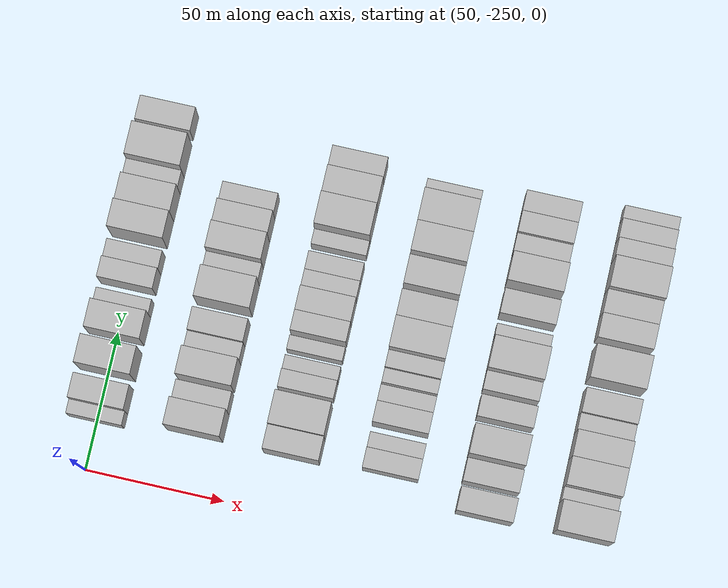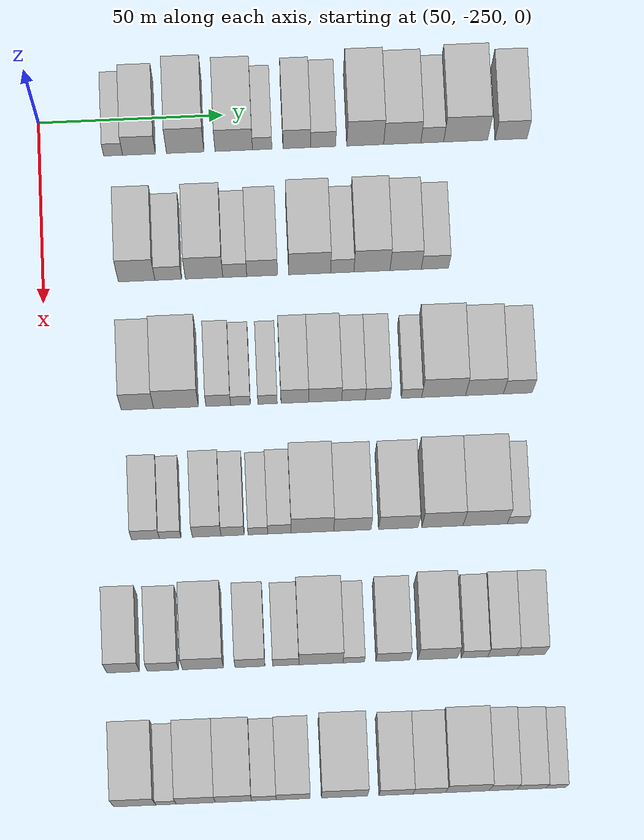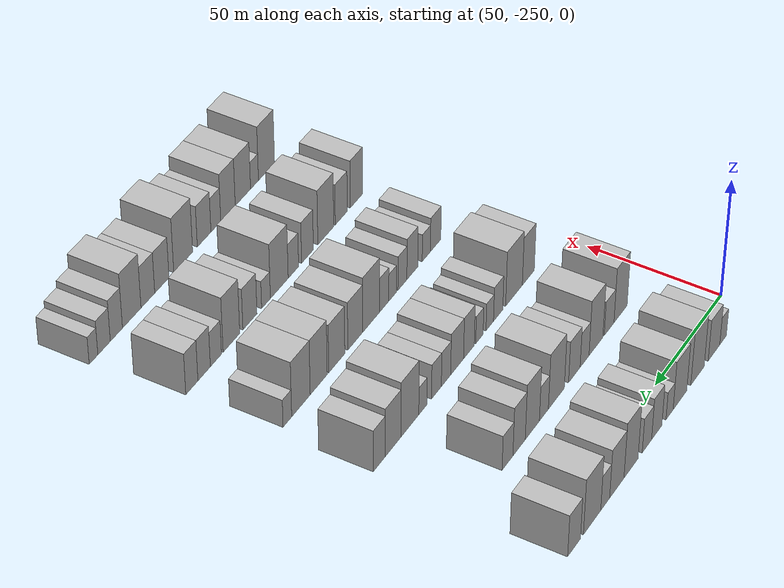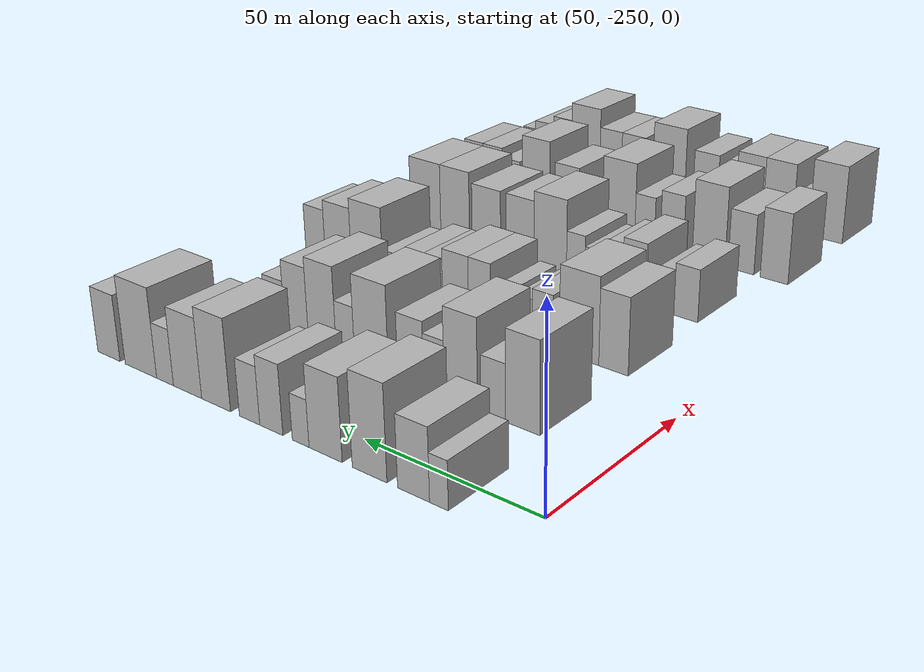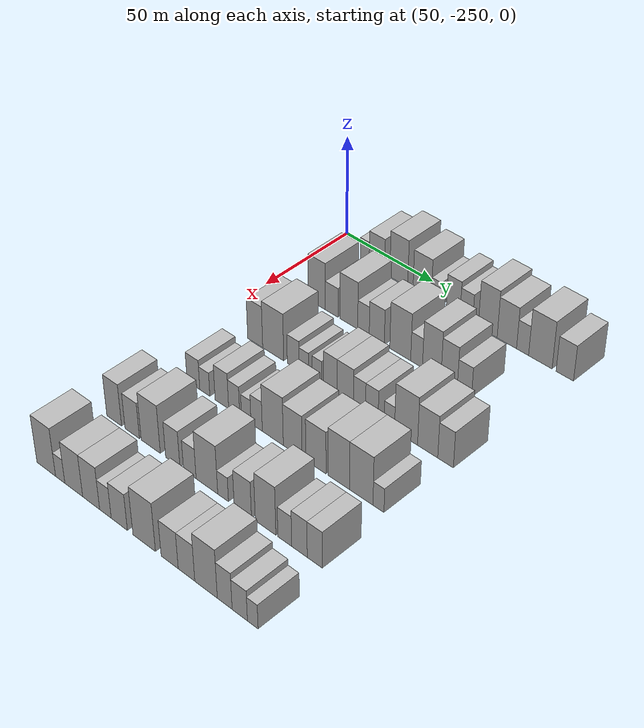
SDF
<sdf version="1.6">
 <world name="default">
  <model name="building_35">
   <static>1</static>
   <pose>50.0000 -230.1163 0 0.000000 0.000000 0.000000</pose>
   <link name="link">
    <pose>0 0 6.00 0 0 0</pose>
    <collision name="collision"><geometry><box><size>20.0000 5.0898 12.0000</size></box></geometry></collision>
    <visual name="visual">
     <cast_shadows>0</cast_shadows>
     <geometry><box><size>20.0000 5.0898 12.0000</size></box></geometry>
     <material>
      <script>
       <uri>model://HANNAS_wall/materials/scripts</uri>
       <uri>model://HANNAS_wall/materials/textures</uri>
       <name>vrc/HANNAS_wall</name>
      </script>
     </material>
    </visual>
   </link>
  </model>
  <model name="building_36">
   <static>1</static>
   <pose>50.0000 -223.1273 0 0.000000 0.000000 0.000000</pose>
   <link name="link">
    <pose>0 0 9.00 0 0 0</pose>
    <collision name="collision"><geometry><box><size>20.0000 8.8881 18.0000</size></box></geometry></collision>
    <visual name="visual">
     <cast_shadows>0</cast_shadows>
     <geometry><box><size>20.0000 8.8881 18.0000</size></box></geometry>
     <material>
      <script>
       <uri>model://HANNAS_wall/materials/scripts</uri>
       <uri>model://HANNAS_wall/materials/textures</uri>
       <name>vrc/HANNAS_wall</name>
      </script>
     </material>
    </visual>
   </link>
  </model>
  <model name="building_37">
   <static>1</static>
   <pose>50.0000 -210.6286 0 0.000000 0.000000 0.000000</pose>
   <link name="link">
    <pose>0 0 12.00 0 0 0</pose>
    <collision name="collision"><geometry><box><size>20.0000 10.1094 24.0000</size></box></geometry></collision>
    <visual name="visual">
     <cast_shadows>0</cast_shadows>
     <geometry><box><size>20.0000 10.1094 24.0000</size></box></geometry>
     <material>
      <script>
       <uri>model://HANNAS_wall/materials/scripts</uri>
       <uri>model://HANNAS_wall/materials/textures</uri>
       <name>vrc/HANNAS_wall</name>
      </script>
     </material>
    </visual>
   </link>
  </model>
  <model name="building_38">
   <static>1</static>
   <pose>50.0000 -197.5220 0 0.000000 0.000000 0.000000</pose>
   <link name="link">
    <pose>0 0 10.50 0 0 0</pose>
    <collision name="collision"><geometry><box><size>20.0000 10.1038 21.0000</size></box></geometry></collision>
    <visual name="visual">
     <cast_shadows>0</cast_shadows>
     <geometry><box><size>20.0000 10.1038 21.0000</size></box></geometry>
     <material>
      <script>
       <uri>model://HANNAS_wall/materials/scripts</uri>
       <uri>model://HANNAS_wall/materials/textures</uri>
       <name>vrc/HANNAS_wall</name>
      </script>
     </material>
    </visual>
   </link>
  </model>
  <model name="building_39">
   <static>1</static>
   <pose>50.0000 -189.8411 0 0.000000 0.000000 0.000000</pose>
   <link name="link">
    <pose>0 0 6.00 0 0 0</pose>
    <collision name="collision"><geometry><box><size>20.0000 5.2579 12.0000</size></box></geometry></collision>
    <visual name="visual">
     <cast_shadows>0</cast_shadows>
     <geometry><box><size>20.0000 5.2579 12.0000</size></box></geometry>
     <material>
      <script>
       <uri>model://HANNAS_wall/materials/scripts</uri>
       <uri>model://HANNAS_wall/materials/textures</uri>
       <name>vrc/HANNAS_wall</name>
      </script>
     </material>
    </visual>
   </link>
  </model>
  <model name="building_40">
   <static>1</static>
   <pose>50.0000 -180.4697 0 0.000000 0.000000 0.000000</pose>
   <link name="link">
    <pose>0 0 9.00 0 0 0</pose>
    <collision name="collision"><geometry><box><size>20.0000 7.4849 18.0000</size></box></geometry></collision>
    <visual name="visual">
     <cast_shadows>0</cast_shadows>
     <geometry><box><size>20.0000 7.4849 18.0000</size></box></geometry>
     <material>
      <script>
       <uri>model://HANNAS_wall/materials/scripts</uri>
       <uri>model://HANNAS_wall/materials/textures</uri>
       <name>vrc/HANNAS_wall</name>
      </script>
     </material>
    </visual>
   </link>
  </model>
  <model name="building_41">
   <static>1</static>
   <pose>50.0000 -173.3436 0 0.000000 0.000000 0.000000</pose>
   <link name="link">
    <pose>0 0 7.50 0 0 0</pose>
    <collision name="collision"><geometry><box><size>20.0000 6.7671 15.0000</size></box></geometry></collision>
    <visual name="visual">
     <cast_shadows>0</cast_shadows>
     <geometry><box><size>20.0000 6.7671 15.0000</size></box></geometry>
     <material>
      <script>
       <uri>model://HANNAS_wall/materials/scripts</uri>
       <uri>model://HANNAS_wall/materials/textures</uri>
       <name>vrc/HANNAS_wall</name>
      </script>
     </material>
    </visual>
   </link>
  </model>
  <model name="building_42">
   <static>1</static>
   <pose>50.0000 -161.9749 0 0.000000 0.000000 0.000000</pose>
   <link name="link">
    <pose>0 0 12.00 0 0 0</pose>
    <collision name="collision"><geometry><box><size>20.0000 9.9704 24.0000</size></box></geometry></collision>
    <visual name="visual">
     <cast_shadows>0</cast_shadows>
     <geometry><box><size>20.0000 9.9704 24.0000</size></box></geometry>
     <material>
      <script>
       <uri>model://HANNAS_wall/materials/scripts</uri>
       <uri>model://HANNAS_wall/materials/textures</uri>
       <name>vrc/HANNAS_wall</name>
      </script>
     </material>
    </visual>
   </link>
  </model>
  <model name="building_43">
   <static>1</static>
   <pose>50.0000 -151.9547 0 0.000000 0.000000 0.000000</pose>
   <link name="link">
    <pose>0 0 10.50 0 0 0</pose>
    <collision name="collision"><geometry><box><size>20.0000 10.0702 21.0000</size></box></geometry></collision>
    <visual name="visual">
     <cast_shadows>0</cast_shadows>
     <geometry><box><size>20.0000 10.0702 21.0000</size></box></geometry>
     <material>
      <script>
       <uri>model://HANNAS_wall/materials/scripts</uri>
       <uri>model://HANNAS_wall/materials/textures</uri>
       <name>vrc/HANNAS_wall</name>
      </script>
     </material>
    </visual>
   </link>
  </model>
  <model name="building_44">
   <static>1</static>
   <pose>50.0000 -143.8304 0 0.000000 0.000000 0.000000</pose>
   <link name="link">
    <pose>0 0 7.50 0 0 0</pose>
    <collision name="collision"><geometry><box><size>20.0000 6.1783 15.0000</size></box></geometry></collision>
    <visual name="visual">
     <cast_shadows>0</cast_shadows>
     <geometry><box><size>20.0000 6.1783 15.0000</size></box></geometry>
     <material>
      <script>
       <uri>model://HANNAS_wall/materials/scripts</uri>
       <uri>model://HANNAS_wall/materials/textures</uri>
       <name>vrc/HANNAS_wall</name>
      </script>
     </material>
    </visual>
   </link>
  </model>
  <model name="building_45">
   <static>1</static>
   <pose>50.0000 -134.7940 0 0.000000 0.000000 0.000000</pose>
   <link name="link">
    <pose>0 0 12.00 0 0 0</pose>
    <collision name="collision"><geometry><box><size>20.0000 11.8945 24.0000</size></box></geometry></collision>
    <visual name="visual">
     <cast_shadows>0</cast_shadows>
     <geometry><box><size>20.0000 11.8945 24.0000</size></box></geometry>
     <material>
      <script>
       <uri>model://HANNAS_wall/materials/scripts</uri>
       <uri>model://HANNAS_wall/materials/textures</uri>
       <name>vrc/HANNAS_wall</name>
      </script>
     </material>
    </visual>
   </link>
  </model>
  <model name="building_46">
   <static>1</static>
   <pose>50.0000 -122.5110 0 0.000000 0.000000 0.000000</pose>
   <link name="link">
    <pose>0 0 9.00 0 0 0</pose>
    <collision name="collision"><geometry><box><size>20.0000 8.6716 18.0000</size></box></geometry></collision>
    <visual name="visual">
     <cast_shadows>0</cast_shadows>
     <geometry><box><size>20.0000 8.6716 18.0000</size></box></geometry>
     <material>
      <script>
       <uri>model://HANNAS_wall/materials/scripts</uri>
       <uri>model://HANNAS_wall/materials/textures</uri>
       <name>vrc/HANNAS_wall</name>
      </script>
     </material>
    </visual>
   </link>
  </model>
  <model name="building_152">
   <static>1</static>
   <pose>85.0000 -224.9317 0 0.000000 0.000000 0.000000</pose>
   <link name="link">
    <pose>0 0 12.00 0 0 0</pose>
    <collision name="collision"><geometry><box><size>20.0000 9.7691 24.0000</size></box></geometry></collision>
    <visual name="visual">
     <cast_shadows>0</cast_shadows>
     <geometry><box><size>20.0000 9.7691 24.0000</size></box></geometry>
     <material>
      <script>
       <uri>model://HANNAS_wall/materials/scripts</uri>
       <uri>model://HANNAS_wall/materials/textures</uri>
       <name>vrc/HANNAS_wall</name>
      </script>
     </material>
    </visual>
   </link>
  </model>
  <model name="building_153">
   <static>1</static>
   <pose>85.0000 -216.4548 0 0.000000 0.000000 0.000000</pose>
   <link name="link">
    <pose>0 0 7.50 0 0 0</pose>
    <collision name="collision"><geometry><box><size>20.0000 7.1848 15.0000</size></box></geometry></collision>
    <visual name="visual">
     <cast_shadows>0</cast_shadows>
     <geometry><box><size>20.0000 7.1848 15.0000</size></box></geometry>
     <material>
      <script>
       <uri>model://HANNAS_wall/materials/scripts</uri>
       <uri>model://HANNAS_wall/materials/textures</uri>
       <name>vrc/HANNAS_wall</name>
      </script>
     </material>
    </visual>
   </link>
  </model>
  <model name="building_154">
   <static>1</static>
   <pose>85.0000 -206.8401 0 0.000000 0.000000 0.000000</pose>
   <link name="link">
    <pose>0 0 12.00 0 0 0</pose>
    <collision name="collision"><geometry><box><size>20.0000 10.0445 24.0000</size></box></geometry></collision>
    <visual name="visual">
     <cast_shadows>0</cast_shadows>
     <geometry><box><size>20.0000 10.0445 24.0000</size></box></geometry>
     <material>
      <script>
       <uri>model://HANNAS_wall/materials/scripts</uri>
       <uri>model://HANNAS_wall/materials/textures</uri>
       <name>vrc/HANNAS_wall</name>
      </script>
     </material>
    </visual>
   </link>
  </model>
  <model name="building_155">
   <static>1</static>
   <pose>85.0000 -198.6066 0 0.000000 0.000000 0.000000</pose>
   <link name="link">
    <pose>0 0 7.50 0 0 0</pose>
    <collision name="collision"><geometry><box><size>20.0000 6.4226 15.0000</size></box></geometry></collision>
    <visual name="visual">
     <cast_shadows>0</cast_shadows>
     <geometry><box><size>20.0000 6.4226 15.0000</size></box></geometry>
     <material>
      <script>
       <uri>model://HANNAS_wall/materials/scripts</uri>
       <uri>model://HANNAS_wall/materials/textures</uri>
       <name>vrc/HANNAS_wall</name>
      </script>
     </material>
    </visual>
   </link>
  </model>
  <model name="building_156">
   <static>1</static>
   <pose>85.0000 -191.2687 0 0.000000 0.000000 0.000000</pose>
   <link name="link">
    <pose>0 0 9.00 0 0 0</pose>
    <collision name="collision"><geometry><box><size>20.0000 8.2532 18.0000</size></box></geometry></collision>
    <visual name="visual">
     <cast_shadows>0</cast_shadows>
     <geometry><box><size>20.0000 8.2532 18.0000</size></box></geometry>
     <material>
      <script>
       <uri>model://HANNAS_wall/materials/scripts</uri>
       <uri>model://HANNAS_wall/materials/textures</uri>
       <name>vrc/HANNAS_wall</name>
      </script>
     </material>
    </visual>
   </link>
  </model>
  <model name="building_157">
   <static>1</static>
   <pose>85.0000 -178.5261 0 0.000000 0.000000 0.000000</pose>
   <link name="link">
    <pose>0 0 12.00 0 0 0</pose>
    <collision name="collision"><geometry><box><size>20.0000 11.2319 24.0000</size></box></geometry></collision>
    <visual name="visual">
     <cast_shadows>0</cast_shadows>
     <geometry><box><size>20.0000 11.2319 24.0000</size></box></geometry>
     <material>
      <script>
       <uri>model://HANNAS_wall/materials/scripts</uri>
       <uri>model://HANNAS_wall/materials/textures</uri>
       <name>vrc/HANNAS_wall</name>
      </script>
     </material>
    </visual>
   </link>
  </model>
  <model name="building_158">
   <static>1</static>
   <pose>85.0000 -169.7829 0 0.000000 0.000000 0.000000</pose>
   <link name="link">
    <pose>0 0 7.50 0 0 0</pose>
    <collision name="collision"><geometry><box><size>20.0000 6.2546 15.0000</size></box></geometry></collision>
    <visual name="visual">
     <cast_shadows>0</cast_shadows>
     <geometry><box><size>20.0000 6.2546 15.0000</size></box></geometry>
     <material>
      <script>
       <uri>model://HANNAS_wall/materials/scripts</uri>
       <uri>model://HANNAS_wall/materials/textures</uri>
       <name>vrc/HANNAS_wall</name>
      </script>
     </material>
    </visual>
   </link>
  </model>
  <model name="building_159">
   <static>1</static>
   <pose>85.0000 -161.7991 0 0.000000 0.000000 0.000000</pose>
   <link name="link">
    <pose>0 0 12.00 0 0 0</pose>
    <collision name="collision"><geometry><box><size>20.0000 9.7130 24.0000</size></box></geometry></collision>
    <visual name="visual">
     <cast_shadows>0</cast_shadows>
     <geometry><box><size>20.0000 9.7130 24.0000</size></box></geometry>
     <material>
      <script>
       <uri>model://HANNAS_wall/materials/scripts</uri>
       <uri>model://HANNAS_wall/materials/textures</uri>
       <name>vrc/HANNAS_wall</name>
      </script>
     </material>
    </visual>
   </link>
  </model>
  <model name="building_160">
   <static>1</static>
   <pose>85.0000 -152.7323 0 0.000000 0.000000 0.000000</pose>
   <link name="link">
    <pose>0 0 10.50 0 0 0</pose>
    <collision name="collision"><geometry><box><size>20.0000 8.4205 21.0000</size></box></geometry></collision>
    <visual name="visual">
     <cast_shadows>0</cast_shadows>
     <geometry><box><size>20.0000 8.4205 21.0000</size></box></geometry>
     <material>
      <script>
       <uri>model://HANNAS_wall/materials/scripts</uri>
       <uri>model://HANNAS_wall/materials/textures</uri>
       <name>vrc/HANNAS_wall</name>
      </script>
     </material>
    </visual>
   </link>
  </model>
  <model name="building_161">
   <static>1</static>
   <pose>85.0000 -144.8650 0 0.000000 0.000000 0.000000</pose>
   <link name="link">
    <pose>0 0 7.50 0 0 0</pose>
    <collision name="collision"><geometry><box><size>20.0000 7.3141 15.0000</size></box></geometry></collision>
    <visual name="visual">
     <cast_shadows>0</cast_shadows>
     <geometry><box><size>20.0000 7.3141 15.0000</size></box></geometry>
     <material>
      <script>
       <uri>model://HANNAS_wall/materials/scripts</uri>
       <uri>model://HANNAS_wall/materials/textures</uri>
       <name>vrc/HANNAS_wall</name>
      </script>
     </material>
    </visual>
   </link>
  </model>
  <model name="building_278">
   <static>1</static>
   <pose>120.0000 -225.8919 0 0.000000 0.000000 0.000000</pose>
   <link name="link">
    <pose>0 0 10.50 0 0 0</pose>
    <collision name="collision"><geometry><box><size>20.0000 8.6397 21.0000</size></box></geometry></collision>
    <visual name="visual">
     <cast_shadows>0</cast_shadows>
     <geometry><box><size>20.0000 8.6397 21.0000</size></box></geometry>
     <material>
      <script>
       <uri>model://HANNAS_wall/materials/scripts</uri>
       <uri>model://HANNAS_wall/materials/textures</uri>
       <name>vrc/HANNAS_wall</name>
      </script>
     </material>
    </visual>
   </link>
  </model>
  <model name="building_279">
   <static>1</static>
   <pose>120.0000 -215.6052 0 0.000000 0.000000 0.000000</pose>
   <link name="link">
    <pose>0 0 12.00 0 0 0</pose>
    <collision name="collision"><geometry><box><size>20.0000 11.9337 24.0000</size></box></geometry></collision>
    <visual name="visual">
     <cast_shadows>0</cast_shadows>
     <geometry><box><size>20.0000 11.9337 24.0000</size></box></geometry>
     <material>
      <script>
       <uri>model://HANNAS_wall/materials/scripts</uri>
       <uri>model://HANNAS_wall/materials/textures</uri>
       <name>vrc/HANNAS_wall</name>
      </script>
     </material>
    </visual>
   </link>
  </model>
  <model name="building_280">
   <static>1</static>
   <pose>120.0000 -204.3570 0 0.000000 0.000000 0.000000</pose>
   <link name="link">
    <pose>0 0 7.50 0 0 0</pose>
    <collision name="collision"><geometry><box><size>20.0000 6.5627 15.0000</size></box></geometry></collision>
    <visual name="visual">
     <cast_shadows>0</cast_shadows>
     <geometry><box><size>20.0000 6.5627 15.0000</size></box></geometry>
     <material>
      <script>
       <uri>model://HANNAS_wall/materials/scripts</uri>
       <uri>model://HANNAS_wall/materials/textures</uri>
       <name>vrc/HANNAS_wall</name>
      </script>
     </material>
    </visual>
   </link>
  </model>
  <model name="building_281">
   <static>1</static>
   <pose>120.0000 -198.4432 0 0.000000 0.000000 0.000000</pose>
   <link name="link">
    <pose>0 0 6.00 0 0 0</pose>
    <collision name="collision"><geometry><box><size>20.0000 5.2649 12.0000</size></box></geometry></collision>
    <visual name="visual">
     <cast_shadows>0</cast_shadows>
     <geometry><box><size>20.0000 5.2649 12.0000</size></box></geometry>
     <material>
      <script>
       <uri>model://HANNAS_wall/materials/scripts</uri>
       <uri>model://HANNAS_wall/materials/textures</uri>
       <name>vrc/HANNAS_wall</name>
      </script>
     </material>
    </visual>
   </link>
  </model>
  <model name="building_282">
   <static>1</static>
   <pose>120.0000 -191.2375 0 0.000000 0.000000 0.000000</pose>
   <link name="link">
    <pose>0 0 6.00 0 0 0</pose>
    <collision name="collision"><geometry><box><size>20.0000 5.1465 12.0000</size></box></geometry></collision>
    <visual name="visual">
     <cast_shadows>0</cast_shadows>
     <geometry><box><size>20.0000 5.1465 12.0000</size></box></geometry>
     <material>
      <script>
       <uri>model://HANNAS_wall/materials/scripts</uri>
       <uri>model://HANNAS_wall/materials/textures</uri>
       <name>vrc/HANNAS_wall</name>
      </script>
     </material>
    </visual>
   </link>
  </model>
  <model name="building_283">
   <static>1</static>
   <pose>120.0000 -183.9865 0 0.000000 0.000000 0.000000</pose>
   <link name="link">
    <pose>0 0 9.00 0 0 0</pose>
    <collision name="collision"><geometry><box><size>20.0000 7.3554 18.0000</size></box></geometry></collision>
    <visual name="visual">
     <cast_shadows>0</cast_shadows>
     <geometry><box><size>20.0000 7.3554 18.0000</size></box></geometry>
     <material>
      <script>
       <uri>model://HANNAS_wall/materials/scripts</uri>
       <uri>model://HANNAS_wall/materials/textures</uri>
       <name>vrc/HANNAS_wall</name>
      </script>
     </material>
    </visual>
   </link>
  </model>
  <model name="building_284">
   <static>1</static>
   <pose>120.0000 -175.9092 0 0.000000 0.000000 0.000000</pose>
   <link name="link">
    <pose>0 0 9.00 0 0 0</pose>
    <collision name="collision"><geometry><box><size>20.0000 8.7992 18.0000</size></box></geometry></collision>
    <visual name="visual">
     <cast_shadows>0</cast_shadows>
     <geometry><box><size>20.0000 8.7992 18.0000</size></box></geometry>
     <material>
      <script>
       <uri>model://HANNAS_wall/materials/scripts</uri>
       <uri>model://HANNAS_wall/materials/textures</uri>
       <name>vrc/HANNAS_wall</name>
      </script>
     </material>
    </visual>
   </link>
  </model>
  <model name="building_285">
   <static>1</static>
   <pose>120.0000 -168.3627 0 0.000000 0.000000 0.000000</pose>
   <link name="link">
    <pose>0 0 7.50 0 0 0</pose>
    <collision name="collision"><geometry><box><size>20.0000 6.2938 15.0000</size></box></geometry></collision>
    <visual name="visual">
     <cast_shadows>0</cast_shadows>
     <geometry><box><size>20.0000 6.2938 15.0000</size></box></geometry>
     <material>
      <script>
       <uri>model://HANNAS_wall/materials/scripts</uri>
       <uri>model://HANNAS_wall/materials/textures</uri>
       <name>vrc/HANNAS_wall</name>
      </script>
     </material>
    </visual>
   </link>
  </model>
  <model name="building_286">
   <static>1</static>
   <pose>120.0000 -161.9159 0 0.000000 0.000000 0.000000</pose>
   <link name="link">
    <pose>0 0 7.50 0 0 0</pose>
    <collision name="collision"><geometry><box><size>20.0000 6.5998 15.0000</size></box></geometry></collision>
    <visual name="visual">
     <cast_shadows>0</cast_shadows>
     <geometry><box><size>20.0000 6.5998 15.0000</size></box></geometry>
     <material>
      <script>
       <uri>model://HANNAS_wall/materials/scripts</uri>
       <uri>model://HANNAS_wall/materials/textures</uri>
       <name>vrc/HANNAS_wall</name>
      </script>
     </material>
    </visual>
   </link>
  </model>
  <model name="building_287">
   <static>1</static>
   <pose>120.0000 -152.8916 0 0.000000 0.000000 0.000000</pose>
   <link name="link">
    <pose>0 0 6.00 0 0 0</pose>
    <collision name="collision"><geometry><box><size>20.0000 5.4488 12.0000</size></box></geometry></collision>
    <visual name="visual">
     <cast_shadows>0</cast_shadows>
     <geometry><box><size>20.0000 5.4488 12.0000</size></box></geometry>
     <material>
      <script>
       <uri>model://HANNAS_wall/materials/scripts</uri>
       <uri>model://HANNAS_wall/materials/textures</uri>
       <name>vrc/HANNAS_wall</name>
      </script>
     </material>
    </visual>
   </link>
  </model>
  <model name="building_288">
   <static>1</static>
   <pose>120.0000 -144.3146 0 0.000000 0.000000 0.000000</pose>
   <link name="link">
    <pose>0 0 12.00 0 0 0</pose>
    <collision name="collision"><geometry><box><size>20.0000 11.7053 24.0000</size></box></geometry></collision>
    <visual name="visual">
     <cast_shadows>0</cast_shadows>
     <geometry><box><size>20.0000 11.7053 24.0000</size></box></geometry>
     <material>
      <script>
       <uri>model://HANNAS_wall/materials/scripts</uri>
       <uri>model://HANNAS_wall/materials/textures</uri>
       <name>vrc/HANNAS_wall</name>
      </script>
     </material>
    </visual>
   </link>
  </model>
  <model name="building_289">
   <static>1</static>
   <pose>120.0000 -133.4188 0 0.000000 0.000000 0.000000</pose>
   <link name="link">
    <pose>0 0 10.50 0 0 0</pose>
    <collision name="collision"><geometry><box><size>20.0000 10.0863 21.0000</size></box></geometry></collision>
    <visual name="visual">
     <cast_shadows>0</cast_shadows>
     <geometry><box><size>20.0000 10.0863 21.0000</size></box></geometry>
     <material>
      <script>
       <uri>model://HANNAS_wall/materials/scripts</uri>
       <uri>model://HANNAS_wall/materials/textures</uri>
       <name>vrc/HANNAS_wall</name>
      </script>
     </material>
    </visual>
   </link>
  </model>
  <model name="building_290">
   <static>1</static>
   <pose>120.0000 -124.5366 0 0.000000 0.000000 0.000000</pose>
   <link name="link">
    <pose>0 0 9.00 0 0 0</pose>
    <collision name="collision"><geometry><box><size>20.0000 7.6782 18.0000</size></box></geometry></collision>
    <visual name="visual">
     <cast_shadows>0</cast_shadows>
     <geometry><box><size>20.0000 7.6782 18.0000</size></box></geometry>
     <material>
      <script>
       <uri>model://HANNAS_wall/materials/scripts</uri>
       <uri>model://HANNAS_wall/materials/textures</uri>
       <name>vrc/HANNAS_wall</name>
      </script>
     </material>
    </visual>
   </link>
  </model>
  <model name="building_400">
   <static>1</static>
   <pose>155.0000 -224.9411 0 0.000000 0.000000 0.000000</pose>
   <link name="link">
    <pose>0 0 7.50 0 0 0</pose>
    <collision name="collision"><geometry><box><size>20.0000 7.3303 15.0000</size></box></geometry></collision>
    <visual name="visual">
     <cast_shadows>0</cast_shadows>
     <geometry><box><size>20.0000 7.3303 15.0000</size></box></geometry>
     <material>
      <script>
       <uri>model://HANNAS_wall/materials/scripts</uri>
       <uri>model://HANNAS_wall/materials/textures</uri>
       <name>vrc/HANNAS_wall</name>
      </script>
     </material>
    </visual>
   </link>
  </model>
  <model name="building_401">
   <static>1</static>
   <pose>155.0000 -218.4146 0 0.000000 0.000000 0.000000</pose>
   <link name="link">
    <pose>0 0 6.00 0 0 0</pose>
    <collision name="collision"><geometry><box><size>20.0000 5.7227 12.0000</size></box></geometry></collision>
    <visual name="visual">
     <cast_shadows>0</cast_shadows>
     <geometry><box><size>20.0000 5.7227 12.0000</size></box></geometry>
     <material>
      <script>
       <uri>model://HANNAS_wall/materials/scripts</uri>
       <uri>model://HANNAS_wall/materials/textures</uri>
       <name>vrc/HANNAS_wall</name>
      </script>
     </material>
    </visual>
   </link>
  </model>
  <model name="building_402">
   <static>1</static>
   <pose>155.0000 -208.7643 0 0.000000 0.000000 0.000000</pose>
   <link name="link">
    <pose>0 0 9.00 0 0 0</pose>
    <collision name="collision"><geometry><box><size>20.0000 7.5779 18.0000</size></box></geometry></collision>
    <visual name="visual">
     <cast_shadows>0</cast_shadows>
     <geometry><box><size>20.0000 7.5779 18.0000</size></box></geometry>
     <material>
      <script>
       <uri>model://HANNAS_wall/materials/scripts</uri>
       <uri>model://HANNAS_wall/materials/textures</uri>
       <name>vrc/HANNAS_wall</name>
      </script>
     </material>
    </visual>
   </link>
  </model>
  <model name="building_403">
   <static>1</static>
   <pose>155.0000 -201.8974 0 0.000000 0.000000 0.000000</pose>
   <link name="link">
    <pose>0 0 7.50 0 0 0</pose>
    <collision name="collision"><geometry><box><size>20.0000 6.1558 15.0000</size></box></geometry></collision>
    <visual name="visual">
     <cast_shadows>0</cast_shadows>
     <geometry><box><size>20.0000 6.1558 15.0000</size></box></geometry>
     <material>
      <script>
       <uri>model://HANNAS_wall/materials/scripts</uri>
       <uri>model://HANNAS_wall/materials/textures</uri>
       <name>vrc/HANNAS_wall</name>
      </script>
     </material>
    </visual>
   </link>
  </model>
  <model name="building_404">
   <static>1</static>
   <pose>155.0000 -195.2292 0 0.000000 0.000000 0.000000</pose>
   <link name="link">
    <pose>0 0 6.00 0 0 0</pose>
    <collision name="collision"><geometry><box><size>20.0000 5.1808 12.0000</size></box></geometry></collision>
    <visual name="visual">
     <cast_shadows>0</cast_shadows>
     <geometry><box><size>20.0000 5.1808 12.0000</size></box></geometry>
     <material>
      <script>
       <uri>model://HANNAS_wall/materials/scripts</uri>
       <uri>model://HANNAS_wall/materials/textures</uri>
       <name>vrc/HANNAS_wall</name>
      </script>
     </material>
    </visual>
   </link>
  </model>
  <model name="building_405">
   <static>1</static>
   <pose>155.0000 -189.5466 0 0.000000 0.000000 0.000000</pose>
   <link name="link">
    <pose>0 0 7.50 0 0 0</pose>
    <collision name="collision"><geometry><box><size>20.0000 6.1844 15.0000</size></box></geometry></collision>
    <visual name="visual">
     <cast_shadows>0</cast_shadows>
     <geometry><box><size>20.0000 6.1844 15.0000</size></box></geometry>
     <material>
      <script>
       <uri>model://HANNAS_wall/materials/scripts</uri>
       <uri>model://HANNAS_wall/materials/textures</uri>
       <name>vrc/HANNAS_wall</name>
      </script>
     </material>
    </visual>
   </link>
  </model>
  <model name="building_406">
   <static>1</static>
   <pose>155.0000 -180.8259 0 0.000000 0.000000 0.000000</pose>
   <link name="link">
    <pose>0 0 12.00 0 0 0</pose>
    <collision name="collision"><geometry><box><size>20.0000 11.2569 24.0000</size></box></geometry></collision>
    <visual name="visual">
     <cast_shadows>0</cast_shadows>
     <geometry><box><size>20.0000 11.2569 24.0000</size></box></geometry>
     <material>
      <script>
       <uri>model://HANNAS_wall/materials/scripts</uri>
       <uri>model://HANNAS_wall/materials/textures</uri>
       <name>vrc/HANNAS_wall</name>
      </script>
     </material>
    </visual>
   </link>
  </model>
  <model name="building_407">
   <static>1</static>
   <pose>155.0000 -170.2589 0 0.000000 0.000000 0.000000</pose>
   <link name="link">
    <pose>0 0 10.50 0 0 0</pose>
    <collision name="collision"><geometry><box><size>20.0000 9.8771 21.0000</size></box></geometry></collision>
    <visual name="visual">
     <cast_shadows>0</cast_shadows>
     <geometry><box><size>20.0000 9.8771 21.0000</size></box></geometry>
     <material>
      <script>
       <uri>model://HANNAS_wall/materials/scripts</uri>
       <uri>model://HANNAS_wall/materials/textures</uri>
       <name>vrc/HANNAS_wall</name>
      </script>
     </material>
    </visual>
   </link>
  </model>
  <model name="building_408">
   <static>1</static>
   <pose>155.0000 -158.1066 0 0.000000 0.000000 0.000000</pose>
   <link name="link">
    <pose>0 0 10.50 0 0 0</pose>
    <collision name="collision"><geometry><box><size>20.0000 10.4275 21.0000</size></box></geometry></collision>
    <visual name="visual">
     <cast_shadows>0</cast_shadows>
     <geometry><box><size>20.0000 10.4275 21.0000</size></box></geometry>
     <material>
      <script>
       <uri>model://HANNAS_wall/materials/scripts</uri>
       <uri>model://HANNAS_wall/materials/textures</uri>
       <name>vrc/HANNAS_wall</name>
      </script>
     </material>
    </visual>
   </link>
  </model>
  <model name="building_409">
   <static>1</static>
   <pose>155.0000 -146.4380 0 0.000000 0.000000 0.000000</pose>
   <link name="link">
    <pose>0 0 12.00 0 0 0</pose>
    <collision name="collision"><geometry><box><size>20.0000 10.9099 24.0000</size></box></geometry></collision>
    <visual name="visual">
     <cast_shadows>0</cast_shadows>
     <geometry><box><size>20.0000 10.9099 24.0000</size></box></geometry>
     <material>
      <script>
       <uri>model://HANNAS_wall/materials/scripts</uri>
       <uri>model://HANNAS_wall/materials/textures</uri>
       <name>vrc/HANNAS_wall</name>
      </script>
     </material>
    </visual>
   </link>
  </model>
  <model name="building_410">
   <static>1</static>
   <pose>155.0000 -135.1256 0 0.000000 0.000000 0.000000</pose>
   <link name="link">
    <pose>0 0 12.00 0 0 0</pose>
    <collision name="collision"><geometry><box><size>20.0000 11.7149 24.0000</size></box></geometry></collision>
    <visual name="visual">
     <cast_shadows>0</cast_shadows>
     <geometry><box><size>20.0000 11.7149 24.0000</size></box></geometry>
     <material>
      <script>
       <uri>model://HANNAS_wall/materials/scripts</uri>
       <uri>model://HANNAS_wall/materials/textures</uri>
       <name>vrc/HANNAS_wall</name>
      </script>
     </material>
    </visual>
   </link>
  </model>
  <model name="building_411">
   <static>1</static>
   <pose>155.0000 -126.5604 0 0.000000 0.000000 0.000000</pose>
   <link name="link">
    <pose>0 0 6.00 0 0 0</pose>
    <collision name="collision"><geometry><box><size>20.0000 5.4154 12.0000</size></box></geometry></collision>
    <visual name="visual">
     <cast_shadows>0</cast_shadows>
     <geometry><box><size>20.0000 5.4154 12.0000</size></box></geometry>
     <material>
      <script>
       <uri>model://HANNAS_wall/materials/scripts</uri>
       <uri>model://HANNAS_wall/materials/textures</uri>
       <name>vrc/HANNAS_wall</name>
      </script>
     </material>
    </visual>
   </link>
  </model>
  <model name="building_520">
   <static>1</static>
   <pose>190.0000 -231.9538 0 0.000000 0.000000 0.000000</pose>
   <link name="link">
    <pose>0 0 10.50 0 0 0</pose>
    <collision name="collision"><geometry><box><size>20.0000 8.5965 21.0000</size></box></geometry></collision>
    <visual name="visual">
     <cast_shadows>0</cast_shadows>
     <geometry><box><size>20.0000 8.5965 21.0000</size></box></geometry>
     <material>
      <script>
       <uri>model://HANNAS_wall/materials/scripts</uri>
       <uri>model://HANNAS_wall/materials/textures</uri>
       <name>vrc/HANNAS_wall</name>
      </script>
     </material>
    </visual>
   </link>
  </model>
  <model name="building_521">
   <static>1</static>
   <pose>190.0000 -221.5150 0 0.000000 0.000000 0.000000</pose>
   <link name="link">
    <pose>0 0 9.00 0 0 0</pose>
    <collision name="collision"><geometry><box><size>20.0000 8.2811 18.0000</size></box></geometry></collision>
    <visual name="visual">
     <cast_shadows>0</cast_shadows>
     <geometry><box><size>20.0000 8.2811 18.0000</size></box></geometry>
     <material>
      <script>
       <uri>model://HANNAS_wall/materials/scripts</uri>
       <uri>model://HANNAS_wall/materials/textures</uri>
       <name>vrc/HANNAS_wall</name>
      </script>
     </material>
    </visual>
   </link>
  </model>
  <model name="building_522">
   <static>1</static>
   <pose>190.0000 -211.0061 0 0.000000 0.000000 0.000000</pose>
   <link name="link">
    <pose>0 0 12.00 0 0 0</pose>
    <collision name="collision"><geometry><box><size>20.0000 10.7366 24.0000</size></box></geometry></collision>
    <visual name="visual">
     <cast_shadows>0</cast_shadows>
     <geometry><box><size>20.0000 10.7366 24.0000</size></box></geometry>
     <material>
      <script>
       <uri>model://HANNAS_wall/materials/scripts</uri>
       <uri>model://HANNAS_wall/materials/textures</uri>
       <name>vrc/HANNAS_wall</name>
      </script>
     </material>
    </visual>
   </link>
  </model>
  <model name="building_523">
   <static>1</static>
   <pose>190.0000 -198.7108 0 0.000000 0.000000 0.000000</pose>
   <link name="link">
    <pose>0 0 9.00 0 0 0</pose>
    <collision name="collision"><geometry><box><size>20.0000 7.8541 18.0000</size></box></geometry></collision>
    <visual name="visual">
     <cast_shadows>0</cast_shadows>
     <geometry><box><size>20.0000 7.8541 18.0000</size></box></geometry>
     <material>
      <script>
       <uri>model://HANNAS_wall/materials/scripts</uri>
       <uri>model://HANNAS_wall/materials/textures</uri>
       <name>vrc/HANNAS_wall</name>
      </script>
     </material>
    </visual>
   </link>
  </model>
  <model name="building_524">
   <static>1</static>
   <pose>190.0000 -189.3622 0 0.000000 0.000000 0.000000</pose>
   <link name="link">
    <pose>0 0 7.50 0 0 0</pose>
    <collision name="collision"><geometry><box><size>20.0000 6.8430 15.0000</size></box></geometry></collision>
    <visual name="visual">
     <cast_shadows>0</cast_shadows>
     <geometry><box><size>20.0000 6.8430 15.0000</size></box></geometry>
     <material>
      <script>
       <uri>model://HANNAS_wall/materials/scripts</uri>
       <uri>model://HANNAS_wall/materials/textures</uri>
       <name>vrc/HANNAS_wall</name>
      </script>
     </material>
    </visual>
   </link>
  </model>
  <model name="building_525">
   <static>1</static>
   <pose>190.0000 -180.1401 0 0.000000 0.000000 0.000000</pose>
   <link name="link">
    <pose>0 0 12.00 0 0 0</pose>
    <collision name="collision"><geometry><box><size>20.0000 11.6011 24.0000</size></box></geometry></collision>
    <visual name="visual">
     <cast_shadows>0</cast_shadows>
     <geometry><box><size>20.0000 11.6011 24.0000</size></box></geometry>
     <material>
      <script>
       <uri>model://HANNAS_wall/materials/scripts</uri>
       <uri>model://HANNAS_wall/materials/textures</uri>
       <name>vrc/HANNAS_wall</name>
      </script>
     </material>
    </visual>
   </link>
  </model>
  <model name="building_526">
   <static>1</static>
   <pose>190.0000 -171.5175 0 0.000000 0.000000 0.000000</pose>
   <link name="link">
    <pose>0 0 6.00 0 0 0</pose>
    <collision name="collision"><geometry><box><size>20.0000 5.6440 12.0000</size></box></geometry></collision>
    <visual name="visual">
     <cast_shadows>0</cast_shadows>
     <geometry><box><size>20.0000 5.6440 12.0000</size></box></geometry>
     <material>
      <script>
       <uri>model://HANNAS_wall/materials/scripts</uri>
       <uri>model://HANNAS_wall/materials/textures</uri>
       <name>vrc/HANNAS_wall</name>
      </script>
     </material>
    </visual>
   </link>
  </model>
  <model name="building_527">
   <static>1</static>
   <pose>190.0000 -161.2106 0 0.000000 0.000000 0.000000</pose>
   <link name="link">
    <pose>0 0 9.00 0 0 0</pose>
    <collision name="collision"><geometry><box><size>20.0000 8.9698 18.0000</size></box></geometry></collision>
    <visual name="visual">
     <cast_shadows>0</cast_shadows>
     <geometry><box><size>20.0000 8.9698 18.0000</size></box></geometry>
     <material>
      <script>
       <uri>model://HANNAS_wall/materials/scripts</uri>
       <uri>model://HANNAS_wall/materials/textures</uri>
       <name>vrc/HANNAS_wall</name>
      </script>
     </material>
    </visual>
   </link>
  </model>
  <model name="building_528">
   <static>1</static>
   <pose>190.0000 -149.4929 0 0.000000 0.000000 0.000000</pose>
   <link name="link">
    <pose>0 0 12.00 0 0 0</pose>
    <collision name="collision"><geometry><box><size>20.0000 10.4657 24.0000</size></box></geometry></collision>
    <visual name="visual">
     <cast_shadows>0</cast_shadows>
     <geometry><box><size>20.0000 10.4657 24.0000</size></box></geometry>
     <material>
      <script>
       <uri>model://HANNAS_wall/materials/scripts</uri>
       <uri>model://HANNAS_wall/materials/textures</uri>
       <name>vrc/HANNAS_wall</name>
      </script>
     </material>
    </visual>
   </link>
  </model>
  <model name="building_529">
   <static>1</static>
   <pose>190.0000 -139.7995 0 0.000000 0.000000 0.000000</pose>
   <link name="link">
    <pose>0 0 7.50 0 0 0</pose>
    <collision name="collision"><geometry><box><size>20.0000 6.9210 15.0000</size></box></geometry></collision>
    <visual name="visual">
     <cast_shadows>0</cast_shadows>
     <geometry><box><size>20.0000 6.9210 15.0000</size></box></geometry>
     <material>
      <script>
       <uri>model://HANNAS_wall/materials/scripts</uri>
       <uri>model://HANNAS_wall/materials/textures</uri>
       <name>vrc/HANNAS_wall</name>
      </script>
     </material>
    </visual>
   </link>
  </model>
  <model name="building_530">
   <static>1</static>
   <pose>190.0000 -132.5030 0 0.000000 0.000000 0.000000</pose>
   <link name="link">
    <pose>0 0 9.00 0 0 0</pose>
    <collision name="collision"><geometry><box><size>20.0000 7.6722 18.0000</size></box></geometry></collision>
    <visual name="visual">
     <cast_shadows>0</cast_shadows>
     <geometry><box><size>20.0000 7.6722 18.0000</size></box></geometry>
     <material>
      <script>
       <uri>model://HANNAS_wall/materials/scripts</uri>
       <uri>model://HANNAS_wall/materials/textures</uri>
       <name>vrc/HANNAS_wall</name>
      </script>
     </material>
    </visual>
   </link>
  </model>
  <model name="building_531">
   <static>1</static>
   <pose>190.0000 -124.9660 0 0.000000 0.000000 0.000000</pose>
   <link name="link">
    <pose>0 0 9.00 0 0 0</pose>
    <collision name="collision"><geometry><box><size>20.0000 7.4018 18.0000</size></box></geometry></collision>
    <visual name="visual">
     <cast_shadows>0</cast_shadows>
     <geometry><box><size>20.0000 7.4018 18.0000</size></box></geometry>
     <material>
      <script>
       <uri>model://HANNAS_wall/materials/scripts</uri>
       <uri>model://HANNAS_wall/materials/textures</uri>
       <name>vrc/HANNAS_wall</name>
      </script>
     </material>
    </visual>
   </link>
  </model>
  <model name="building_647">
   <static>1</static>
   <pose>225.0000 -230.0612 0 0.000000 0.000000 0.000000</pose>
   <link name="link">
    <pose>0 0 12.00 0 0 0</pose>
    <collision name="collision"><geometry><box><size>20.0000 10.8761 24.0000</size></box></geometry></collision>
    <visual name="visual">
     <cast_shadows>0</cast_shadows>
     <geometry><box><size>20.0000 10.8761 24.0000</size></box></geometry>
     <material>
      <script>
       <uri>model://HANNAS_wall/materials/scripts</uri>
       <uri>model://HANNAS_wall/materials/textures</uri>
       <name>vrc/HANNAS_wall</name>
      </script>
     </material>
    </visual>
   </link>
  </model>
  <model name="building_648">
   <static>1</static>
   <pose>225.0000 -221.9661 0 0.000000 0.000000 0.000000</pose>
   <link name="link">
    <pose>0 0 6.00 0 0 0</pose>
    <collision name="collision"><geometry><box><size>20.0000 5.3139 12.0000</size></box></geometry></collision>
    <visual name="visual">
     <cast_shadows>0</cast_shadows>
     <geometry><box><size>20.0000 5.3139 12.0000</size></box></geometry>
     <material>
      <script>
       <uri>model://HANNAS_wall/materials/scripts</uri>
       <uri>model://HANNAS_wall/materials/textures</uri>
       <name>vrc/HANNAS_wall</name>
      </script>
     </material>
    </visual>
   </link>
  </model>
  <model name="building_649">
   <static>1</static>
   <pose>225.0000 -214.2357 0 0.000000 0.000000 0.000000</pose>
   <link name="link">
    <pose>0 0 10.50 0 0 0</pose>
    <collision name="collision"><geometry><box><size>20.0000 10.1469 21.0000</size></box></geometry></collision>
    <visual name="visual">
     <cast_shadows>0</cast_shadows>
     <geometry><box><size>20.0000 10.1469 21.0000</size></box></geometry>
     <material>
      <script>
       <uri>model://HANNAS_wall/materials/scripts</uri>
       <uri>model://HANNAS_wall/materials/textures</uri>
       <name>vrc/HANNAS_wall</name>
      </script>
     </material>
    </visual>
   </link>
  </model>
  <model name="building_650">
   <static>1</static>
   <pose>225.0000 -204.4205 0 0.000000 0.000000 0.000000</pose>
   <link name="link">
    <pose>0 0 10.50 0 0 0</pose>
    <collision name="collision"><geometry><box><size>20.0000 9.4836 21.0000</size></box></geometry></collision>
    <visual name="visual">
     <cast_shadows>0</cast_shadows>
     <geometry><box><size>20.0000 9.4836 21.0000</size></box></geometry>
     <material>
      <script>
       <uri>model://HANNAS_wall/materials/scripts</uri>
       <uri>model://HANNAS_wall/materials/textures</uri>
       <name>vrc/HANNAS_wall</name>
      </script>
     </material>
    </visual>
   </link>
  </model>
  <model name="building_651">
   <static>1</static>
   <pose>225.0000 -196.4888 0 0.000000 0.000000 0.000000</pose>
   <link name="link">
    <pose>0 0 7.50 0 0 0</pose>
    <collision name="collision"><geometry><box><size>20.0000 6.3797 15.0000</size></box></geometry></collision>
    <visual name="visual">
     <cast_shadows>0</cast_shadows>
     <geometry><box><size>20.0000 6.3797 15.0000</size></box></geometry>
     <material>
      <script>
       <uri>model://HANNAS_wall/materials/scripts</uri>
       <uri>model://HANNAS_wall/materials/textures</uri>
       <name>vrc/HANNAS_wall</name>
      </script>
     </material>
    </visual>
   </link>
  </model>
  <model name="building_652">
   <static>1</static>
   <pose>225.0000 -188.9046 0 0.000000 0.000000 0.000000</pose>
   <link name="link">
    <pose>0 0 9.00 0 0 0</pose>
    <collision name="collision"><geometry><box><size>20.0000 8.7887 18.0000</size></box></geometry></collision>
    <visual name="visual">
     <cast_shadows>0</cast_shadows>
     <geometry><box><size>20.0000 8.7887 18.0000</size></box></geometry>
     <material>
      <script>
       <uri>model://HANNAS_wall/materials/scripts</uri>
       <uri>model://HANNAS_wall/materials/textures</uri>
       <name>vrc/HANNAS_wall</name>
      </script>
     </material>
    </visual>
   </link>
  </model>
  <model name="building_653">
   <static>1</static>
   <pose>225.0000 -175.5267 0 0.000000 0.000000 0.000000</pose>
   <link name="link">
    <pose>0 0 12.00 0 0 0</pose>
    <collision name="collision"><geometry><box><size>20.0000 11.9670 24.0000</size></box></geometry></collision>
    <visual name="visual">
     <cast_shadows>0</cast_shadows>
     <geometry><box><size>20.0000 11.9670 24.0000</size></box></geometry>
     <material>
      <script>
       <uri>model://HANNAS_wall/materials/scripts</uri>
       <uri>model://HANNAS_wall/materials/textures</uri>
       <name>vrc/HANNAS_wall</name>
      </script>
     </material>
    </visual>
   </link>
  </model>
  <model name="building_654">
   <static>1</static>
   <pose>225.0000 -162.0972 0 0.000000 0.000000 0.000000</pose>
   <link name="link">
    <pose>0 0 9.00 0 0 0</pose>
    <collision name="collision"><geometry><box><size>20.0000 8.8920 18.0000</size></box></geometry></collision>
    <visual name="visual">
     <cast_shadows>0</cast_shadows>
     <geometry><box><size>20.0000 8.8920 18.0000</size></box></geometry>
     <material>
      <script>
       <uri>model://HANNAS_wall/materials/scripts</uri>
       <uri>model://HANNAS_wall/materials/textures</uri>
       <name>vrc/HANNAS_wall</name>
      </script>
     </material>
    </visual>
   </link>
  </model>
  <model name="building_655">
   <static>1</static>
   <pose>225.0000 -153.4060 0 0.000000 0.000000 0.000000</pose>
   <link name="link">
    <pose>0 0 9.00 0 0 0</pose>
    <collision name="collision"><geometry><box><size>20.0000 8.4904 18.0000</size></box></geometry></collision>
    <visual name="visual">
     <cast_shadows>0</cast_shadows>
     <geometry><box><size>20.0000 8.4904 18.0000</size></box></geometry>
     <material>
      <script>
       <uri>model://HANNAS_wall/materials/scripts</uri>
       <uri>model://HANNAS_wall/materials/textures</uri>
       <name>vrc/HANNAS_wall</name>
      </script>
     </material>
    </visual>
   </link>
  </model>
  <model name="building_656">
   <static>1</static>
   <pose>225.0000 -143.4946 0 0.000000 0.000000 0.000000</pose>
   <link name="link">
    <pose>0 0 12.00 0 0 0</pose>
    <collision name="collision"><geometry><box><size>20.0000 11.3323 24.0000</size></box></geometry></collision>
    <visual name="visual">
     <cast_shadows>0</cast_shadows>
     <geometry><box><size>20.0000 11.3323 24.0000</size></box></geometry>
     <material>
      <script>
       <uri>model://HANNAS_wall/materials/scripts</uri>
       <uri>model://HANNAS_wall/materials/textures</uri>
       <name>vrc/HANNAS_wall</name>
      </script>
     </material>
    </visual>
   </link>
  </model>
  <model name="building_657">
   <static>1</static>
   <pose>225.0000 -134.1549 0 0.000000 0.000000 0.000000</pose>
   <link name="link">
    <pose>0 0 9.00 0 0 0</pose>
    <collision name="collision"><geometry><box><size>20.0000 7.3472 18.0000</size></box></geometry></collision>
    <visual name="visual">
     <cast_shadows>0</cast_shadows>
     <geometry><box><size>20.0000 7.3472 18.0000</size></box></geometry>
     <material>
      <script>
       <uri>model://HANNAS_wall/materials/scripts</uri>
       <uri>model://HANNAS_wall/materials/textures</uri>
       <name>vrc/HANNAS_wall</name>
      </script>
     </material>
    </visual>
   </link>
  </model>
  <model name="building_658">
   <static>1</static>
   <pose>225.0000 -126.7521 0 0.000000 0.000000 0.000000</pose>
   <link name="link">
    <pose>0 0 7.50 0 0 0</pose>
    <collision name="collision"><geometry><box><size>20.0000 7.4584 15.0000</size></box></geometry></collision>
    <visual name="visual">
     <cast_shadows>0</cast_shadows>
     <geometry><box><size>20.0000 7.4584 15.0000</size></box></geometry>
     <material>
      <script>
       <uri>model://HANNAS_wall/materials/scripts</uri>
       <uri>model://HANNAS_wall/materials/textures</uri>
       <name>vrc/HANNAS_wall</name>
      </script>
     </material>
    </visual>
   </link>
  </model>
  <model name="building_659">
   <static>1</static>
   <pose>225.0000 -120.4429 0 0.000000 0.000000 0.000000</pose>
   <link name="link">
    <pose>0 0 6.00 0 0 0</pose>
    <collision name="collision"><geometry><box><size>20.0000 5.1600 12.0000</size></box></geometry></collision>
    <visual name="visual">
     <cast_shadows>0</cast_shadows>
     <geometry><box><size>20.0000 5.1600 12.0000</size></box></geometry>
     <material>
      <script>
       <uri>model://HANNAS_wall/materials/scripts</uri>
       <uri>model://HANNAS_wall/materials/textures</uri>
       <name>vrc/HANNAS_wall</name>
      </script>
     </material>
    </visual>
   </link>
  </model>
 </world>
</sdf>
